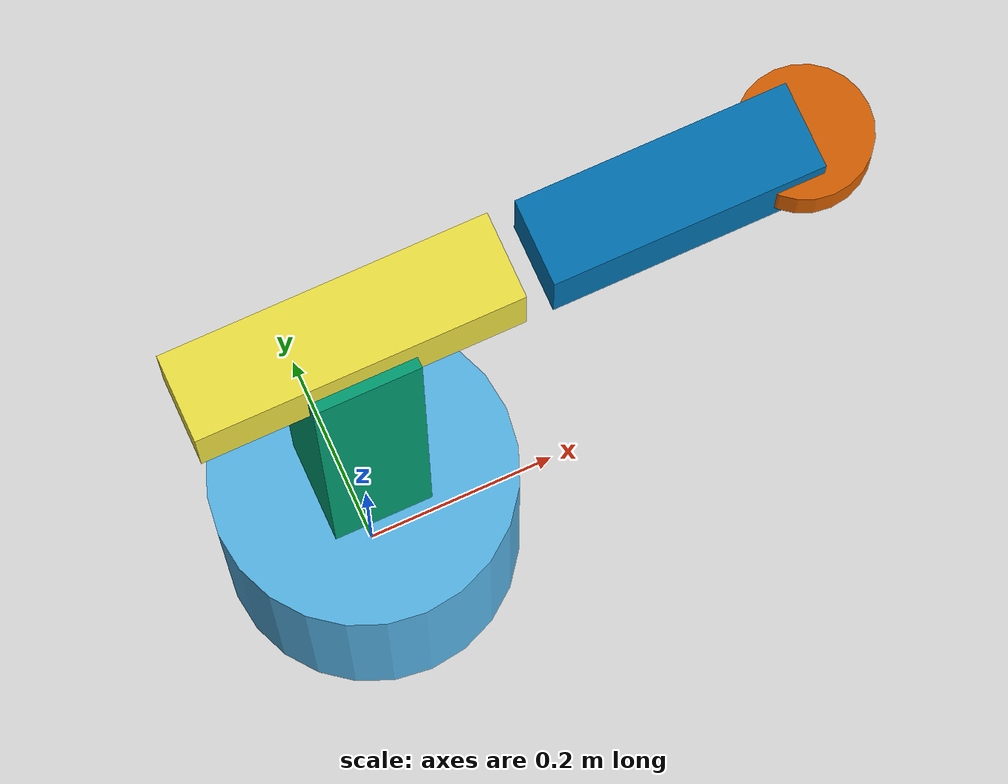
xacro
<?xml version="1.0"?>
<robot xmlns:xacro="http://www.ros.org/wiki/xacro" name="practise">
    <xacro:arg name="initial_positions_file" default="initial_positions.yaml" />

    <!-- Import practise urdf file -->
    <xacro:include filename="$(find practise_description)/urdf/practise.xacro" />

    <!-- Import control_xacro -->
    <xacro:include filename="practise.ros2_control.xacro" />

    <xacro:practise_ros2_control name="FakeSystem" initial_positions_file="$(arg initial_positions_file)"/>

</robot>

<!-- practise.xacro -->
<robot name="practise" xmlns:xacro="http://www.ros.org/wiki/xacro">
  <xacro:arg name="use_gazebo" default="false"/>
  <xacro:property name="use_gazebo" value="$(arg use_gazebo)"/>

  <!-- ========== world anchor ========== -->
  <link name="world"/>
  <joint name="world_to_base" type="fixed">
    <parent link="world"/>
    <child link="base_link"/>
    <origin xyz="0 0 0.15"/>
    <!-- base_link is a cylinder centered on its own origin, L=0.3, so center is 0.15m up -->
  </joint>

  <!-- ========== macros: inertia ========== -->
  <xacro:macro name="box_inertia" params="m x y z">
    <inertial>
      <mass value="${m}"/>
      <inertia ixx="${m*(y*y+z*z)/12}" ixy="0" ixz="0"
               iyy="${m*(x*x+z*z)/12}" iyz="0"
               izz="${m*(x*x+y*y)/12}"/>
    </inertial>
  </xacro:macro>

  <xacro:macro name="cylinder_inertia" params="m r h">
    <inertial>
      <mass value="${m}"/>
      <inertia ixx="${m*(3*r*r+h*h)/12}" ixy="0" ixz="0"
               iyy="${m*(3*r*r+h*h)/12}" iyz="0"
               izz="${m*r*r/2}"/>
    </inertial>
  </xacro:macro>

  <!-- ========== macros: links ========== -->
  <xacro:macro name="cylinder_link" params="Link_name L R M">
    <link name="${Link_name}">
      <visual>
        <geometry>
          <cylinder length="${L}" radius="${R}"/>
        </geometry>
      </visual>
      <collision>
        <geometry>
          <cylinder length="${L}" radius="${R}"/>
        </geometry>
      </collision>
      <xacro:cylinder_inertia m="${M}" r="${R}" h="${L}"/>
    </link>
  </xacro:macro>

  <xacro:macro name="box_link" params="Link_name X Y Z M">
    <link name="${Link_name}">
      <visual>
        <geometry>
          <box size="${X} ${Y} ${Z}"/>
        </geometry>
      </visual>
      <collision>
        <geometry>
          <box size="${X} ${Y} ${Z}"/>
        </geometry>
      </collision>
      <xacro:box_inertia m="${M}" x="${X}" y="${Y}" z="${Z}"/>
    </link>
  </xacro:macro>

  <xacro:macro name="box_link_finger" params="Link_name X Y Z M x y z">
    <link name="${Link_name}">
      <visual>
        <origin xyz="${x} ${y} ${z}"/>
        <geometry>
          <box size="${X} ${Y} ${Z}"/>
        </geometry>
      </visual>
      <collision>
        <origin xyz="${x} ${y} ${z}"/>
        <geometry>
          <box size="${X} ${Y} ${Z}"/>
        </geometry>
      </collision>
      <xacro:box_inertia m="${M}" x="${X}" y="${Y}" z="${Z}"/>
    </link>
  </xacro:macro>

  <!-- ========== link definitions ========== -->
  <xacro:cylinder_link Link_name="base_link" L="0.3" R="0.15" M="1"/>
  <!-- Reduced base R from 0.3 to 0.15 (30cm diameter is more realistic) -->

  <xacro:box_link Link_name="vertical_rail" X="0.1" Y="0.1" Z="0.5" M="1"/>
  <!-- Changed Y from 0.3 to 0.1 - square cross-section pillar (10x10x50 cm) -->

  <xacro:box_link Link_name="upper_arm" X="0.3" Y="0.08" Z="0.08" M="1"/>
  <!-- IMPORTANT: Rewrote arm to extend along X, not Y. Standard SCARA convention -->
  <!-- upper_arm is 30cm long along X, 8x8 cm cross-section -->

  <xacro:box_link Link_name="lower_arm" X="0.25" Y="0.08" Z="0.08" M="1"/>
  <!-- lower_arm is 25cm long along X, same cross-section -->

  <xacro:cylinder_link Link_name="wrist_plate" L="0.04" R="0.06" M="0.5"/>
  <!-- Reduced R from 0.3 to 0.06 (12cm diameter wrist, was 60cm before) -->
  <!-- Made it thinner too (L=0.04 = 4cm thick) -->

  <xacro:box_link_finger Link_name="left_finger"
                          X="0.02" Y="0.01" Z="0.06" M="0.05"
                          x="0" y="0" z="-0.03"/>
  <!-- Smaller fingers: 2cm wide x 1cm thick x 6cm long -->
  <!-- Origin is at top of finger, so it hangs downward from wrist_plate -->

  <xacro:box_link_finger Link_name="right_finger"
                          X="0.02" Y="0.01" Z="0.06" M="0.05"
                          x="0" y="0" z="-0.03"/>

  <!-- ========== joint definitions ========== -->

  <!-- joint1: base to vertical_rail (fixed pillar) -->
  <joint name="joint1" type="fixed">
    <parent link="base_link"/>
    <child link="vertical_rail"/>
    <origin xyz="0 0 0.4"/>
    <!-- vertical_rail sits above base_link -->
    <!-- base_link L=0.3, its center is 0.15 up, top is at 0.3 -->
    <!-- vertical_rail L=0.5, centered on its own origin, so its bottom is at -0.25 -->
    <!-- We want rail's bottom to touch base_link's top: 0.3 + 0.25 = 0.55... wait -->
    <!-- Actually simpler: base_link top edge is at z=0.15 (its center) + 0.15 (half height) = 0.3 -->
    <!-- rail's bottom edge is at rail_origin - 0.25. To sit at z=0.3, rail origin needs to be at z=0.3+0.25=0.55 -->
    <!-- But since rail's origin is relative to base_link origin (which is at z=0.15 in world), -->
    <!-- rail origin in base_link frame = 0.55 - 0.15 = 0.4 -->
  </joint>

  <!-- shoulder: rotates around Z (waist-style horizontal rotation) -->
  <joint name="shoulder" type="revolute">
    <parent link="vertical_rail"/>
    <child link="upper_arm"/>
    <origin xyz="0 0 0.25"/>
    <!-- upper_arm sits on top of vertical_rail (rail's top = 0.25 above its origin) -->
    <axis xyz="0 0 1"/>
    <!-- Rotates around Z (this makes it a "waist" rotation - swings arm horizontally) -->
    <limit lower="-3.14" upper="3.14" effort="10" velocity="1.0"/>
  </joint>

  <!-- elbow: rotates around Z -->
  <joint name="elbow" type="revolute">
    <parent link="upper_arm"/>
    <child link="lower_arm"/>
    <origin xyz="0.3 0 0"/>
    <!-- lower_arm attaches at the far end of upper_arm (upper_arm X=0.3, centered on origin, so far end is at x=0.15) -->
    <!-- BUT: upper_arm's origin is at its center, so far end is at x=+0.15 -->
    <!-- To attach lower_arm's origin at that point: 0.15 in upper_arm frame -->
    <!-- Wait, but that puts lower_arm's CENTER at that point, so half of lower_arm sticks BACK -->
    <!-- Actually let's use 0.3 (full arm length) if we assume arm extends from origin -->
    <!-- Given your box_link macro centers geometry on origin, use 0.15 (half-length) -->
    <axis xyz="0 0 1"/>
    <limit lower="-2.5" upper="2.5" effort="10" velocity="1.0"/>
  </joint>

  <!-- wrist: rotates wrist plate around Z -->
  <joint name="wrist" type="revolute">
    <parent link="lower_arm"/>
    <child link="wrist_plate"/>
    <origin xyz="0.125 0 0"/>
    <!-- wrist attaches at the far end of lower_arm (X=0.25 centered, half=0.125) -->
    <axis xyz="0 0 1"/>
    <limit lower="-3.14" upper="3.14" effort="5" velocity="1.0"/>
  </joint>

  <!-- left_finger: prismatic, slides along Y (sideways) -->
  <joint name="left_finger_joint" type="prismatic">
    <parent link="wrist_plate"/>
    <child link="left_finger"/>
    <origin xyz="0 0.015 -0.02"/>
    <!-- Y=0.015: initial position 1.5cm to the right (opens/closes around this) -->
    <!-- Z=-0.02: 2cm below wrist_plate center -->
    <axis xyz="0 1 0"/>
    <!-- Slides along Y (sideways) - opens outward, closes inward -->
    <limit lower="-0.01" upper="0.02" effort="10" velocity="0.1"/>
    <!-- Range: -1cm to +2cm from initial position -->
  </joint>

  <!-- right_finger: prismatic, mirror of left -->
  <joint name="right_finger_joint" type="prismatic">
    <parent link="wrist_plate"/>
    <child link="right_finger"/>
    <origin xyz="0 -0.015 -0.02"/>
    <!-- Y=-0.015: initial position 1.5cm to the left (mirror) -->
    <axis xyz="0 1 0"/>
    <limit lower="-0.02" upper="0.01" effort="10" velocity="0.1"/>
    <!-- Range mirrored: -2cm to +1cm -->
  </joint>

  <!-- ========== ros2_control ========== -->
  <ros2_control name="practiseSystem" type="system">
    <hardware>
      <xacro:if value="${use_gazebo}">
        <plugin>gazebo_ros2_control/GazeboSystem</plugin>
      </xacro:if>
      <xacro:unless value="${use_gazebo}">
        <plugin>mock_components/GenericSystem</plugin>
      </xacro:unless>
    </hardware>

    <!-- NOTE: joint1 is fixed, so it's NOT listed in ros2_control -->
    <!-- Fixed joints don't need controllers -->

    <joint name="shoulder">
      <command_interface name="position"/>
      <state_interface name="position"/>
      <state_interface name="velocity"/>
    </joint>

    <joint name="elbow">
      <command_interface name="position"/>
      <state_interface name="position"/>
      <state_interface name="velocity"/>
    </joint>

    <joint name="wrist">
      <command_interface name="position"/>
      <state_interface name="position"/>
      <state_interface name="velocity"/>
    </joint>

    <joint name="left_finger_joint">
      <command_interface name="position"/>
      <state_interface name="position"/>
      <state_interface name="velocity"/>
    </joint>

    <joint name="right_finger_joint">
      <command_interface name="position"/>
      <state_interface name="position"/>
      <state_interface name="velocity"/>
    </joint>
  </ros2_control>
</robot>
